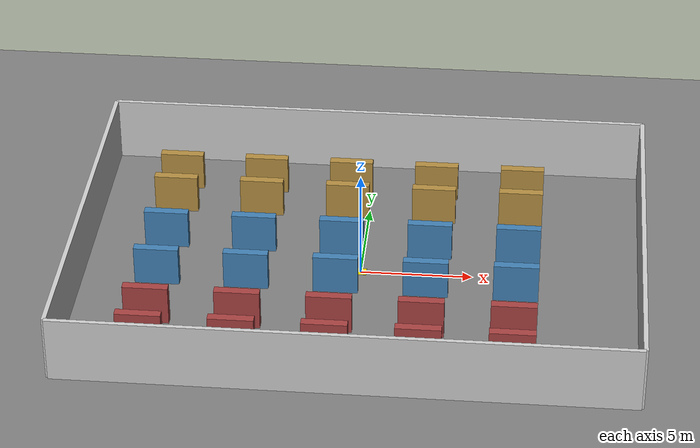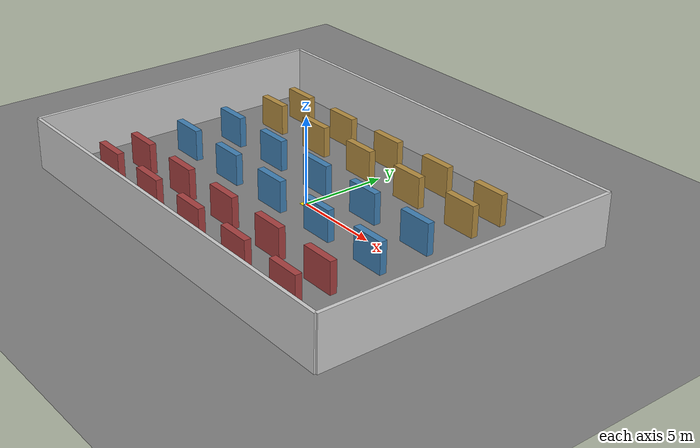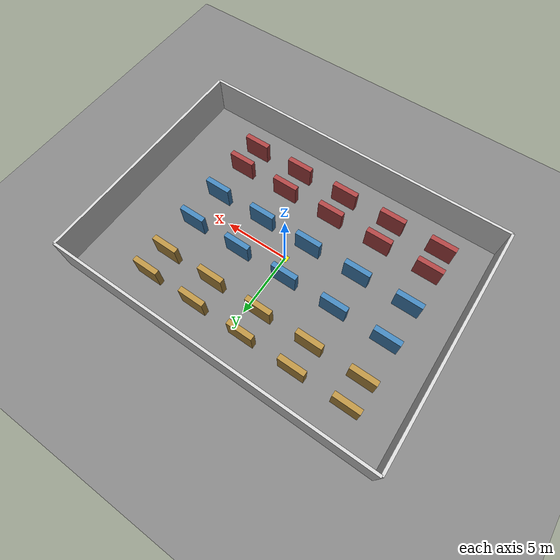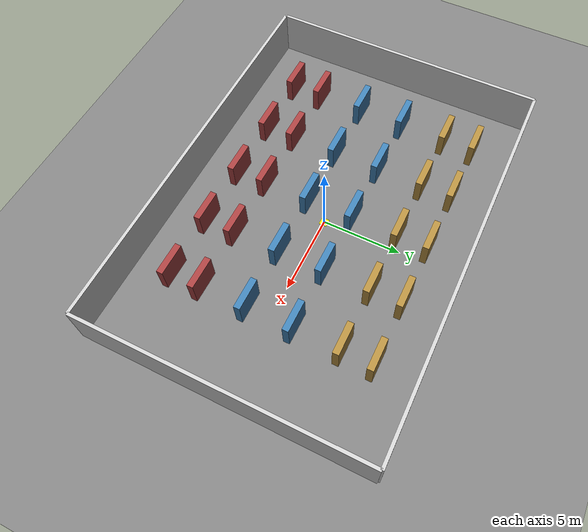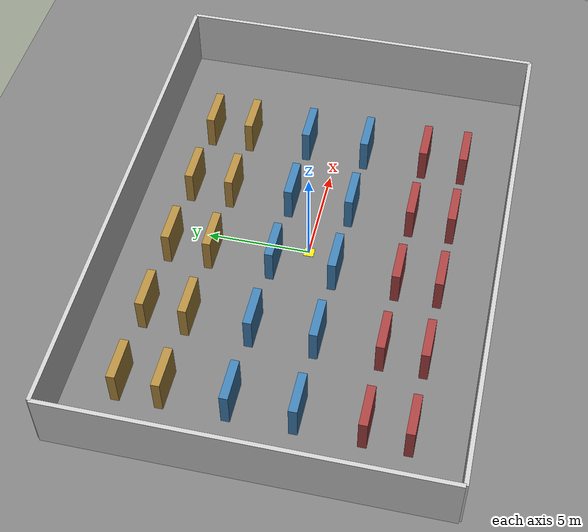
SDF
<?xml version="1.0" ?>
<sdf version="1.6">
  <world name="aviation_warehouse">

    <!-- ── Lighting ── -->
    <light name="sun" type="directional">
      <cast_shadows>true</cast_shadows>
      <pose>0 0 20 0 0 0</pose>
      <diffuse>0.8 0.8 0.8 1</diffuse>
      <specular>0.2 0.2 0.2 1</specular>
      <direction>-0.5 0.1 -0.9</direction>
    </light>

    <light name="ceiling_light_1" type="point">
      <pose>0 0 5.5 0 0 0</pose>
      <diffuse>1 1 0.95 1</diffuse>
      <specular>0.1 0.1 0.1 1</specular>
      <attenuation><range>20</range><linear>0.05</linear></attenuation>
    </light>

    <light name="ceiling_light_2" type="point">
      <pose>10 0 5.5 0 0 0</pose>
      <diffuse>1 1 0.95 1</diffuse>
      <specular>0.1 0.1 0.1 1</specular>
      <attenuation><range>20</range><linear>0.05</linear></attenuation>
    </light>

    <light name="ceiling_light_3" type="point">
      <pose>-10 0 5.5 0 0 0</pose>
      <diffuse>1 1 0.95 1</diffuse>
      <specular>0.1 0.1 0.1 1</specular>
      <attenuation><range>20</range><linear>0.05</linear></attenuation>
    </light>

    <!-- ── Physics ── -->
    <physics type="ode">
      <real_time_update_rate>1000</real_time_update_rate>
      <max_step_size>0.001</max_step_size>
    </physics>

    <!-- ── Ground plane ── -->
    <model name="ground_plane">
      <static>true</static>
      <link name="link">
        <collision name="collision">
          <geometry><plane><normal>0 0 1</normal><size>60 40</size></plane></geometry>
        </collision>
        <visual name="visual">
          <geometry><plane><normal>0 0 1</normal><size>60 40</size></plane></geometry>
          <material>
            <ambient>0.4 0.4 0.4 1</ambient>
            <diffuse>0.5 0.5 0.5 1</diffuse>
          </material>
        </visual>
      </link>
    </model>

    <!-- ══════════════════════════════════════
         WAREHOUSE OUTER WALLS  (25 m × 18 m)
         ══════════════════════════════════════ -->

    <!-- North wall -->
    <model name="wall_north">
      <static>true</static>
      <pose>0 9 1.5 0 0 0</pose>
      <link name="link">
        <collision name="c"><geometry><box><size>25 0.2 3</size></box></geometry></collision>
        <visual name="v"><geometry><box><size>25 0.2 3</size></box></geometry>
          <material><ambient>0.7 0.7 0.7 1</ambient><diffuse>0.8 0.8 0.8 1</diffuse></material>
        </visual>
      </link>
    </model>

    <!-- South wall -->
    <model name="wall_south">
      <static>true</static>
      <pose>0 -9 1.5 0 0 0</pose>
      <link name="link">
        <collision name="c"><geometry><box><size>25 0.2 3</size></box></geometry></collision>
        <visual name="v"><geometry><box><size>25 0.2 3</size></box></geometry>
          <material><ambient>0.7 0.7 0.7 1</ambient><diffuse>0.8 0.8 0.8 1</diffuse></material>
        </visual>
      </link>
    </model>

    <!-- East wall -->
    <model name="wall_east">
      <static>true</static>
      <pose>12.5 0 1.5 0 0 0</pose>
      <link name="link">
        <collision name="c"><geometry><box><size>0.2 18 3</size></box></geometry></collision>
        <visual name="v"><geometry><box><size>0.2 18 3</size></box></geometry>
          <material><ambient>0.7 0.7 0.7 1</ambient><diffuse>0.8 0.8 0.8 1</diffuse></material>
        </visual>
      </link>
    </model>

    <!-- West wall -->
    <model name="wall_west">
      <static>true</static>
      <pose>-12.5 0 1.5 0 0 0</pose>
      <link name="link">
        <collision name="c"><geometry><box><size>0.2 18 3</size></box></geometry></collision>
        <visual name="v"><geometry><box><size>0.2 18 3</size></box></geometry>
          <material><ambient>0.7 0.7 0.7 1</ambient><diffuse>0.8 0.8 0.8 1</diffuse></material>
        </visual>
      </link>
    </model>

    <!-- Helper macro: each shelf bay = 2 m wide, 0.4 m deep, 1.8 m tall -->
    <!-- Row A  (y=+6.5) -->
    <model name="shelf_A1"><static>true</static><pose>-9  6.5 0.9 0 0 0</pose>
      <link name="l"><collision name="c"><geometry><box><size>2 0.4 1.8</size></box></geometry></collision>
      <visual name="v"><geometry><box><size>2 0.4 1.8</size></box></geometry>
        <material><ambient>0.6 0.45 0.2 1</ambient><diffuse>0.7 0.55 0.25 1</diffuse></material></visual></link></model>
    <model name="shelf_A2"><static>true</static><pose>-5  6.5 0.9 0 0 0</pose>
      <link name="l"><collision name="c"><geometry><box><size>2 0.4 1.8</size></box></geometry></collision>
      <visual name="v"><geometry><box><size>2 0.4 1.8</size></box></geometry>
        <material><ambient>0.6 0.45 0.2 1</ambient><diffuse>0.7 0.55 0.25 1</diffuse></material></visual></link></model>
    <model name="shelf_A3"><static>true</static><pose>-1  6.5 0.9 0 0 0</pose>
      <link name="l"><collision name="c"><geometry><box><size>2 0.4 1.8</size></box></geometry></collision>
      <visual name="v"><geometry><box><size>2 0.4 1.8</size></box></geometry>
        <material><ambient>0.6 0.45 0.2 1</ambient><diffuse>0.7 0.55 0.25 1</diffuse></material></visual></link></model>
    <model name="shelf_A4"><static>true</static><pose> 3  6.5 0.9 0 0 0</pose>
      <link name="l"><collision name="c"><geometry><box><size>2 0.4 1.8</size></box></geometry></collision>
      <visual name="v"><geometry><box><size>2 0.4 1.8</size></box></geometry>
        <material><ambient>0.6 0.45 0.2 1</ambient><diffuse>0.7 0.55 0.25 1</diffuse></material></visual></link></model>
    <model name="shelf_A5"><static>true</static><pose> 7  6.5 0.9 0 0 0</pose>
      <link name="l"><collision name="c"><geometry><box><size>2 0.4 1.8</size></box></geometry></collision>
      <visual name="v"><geometry><box><size>2 0.4 1.8</size></box></geometry>
        <material><ambient>0.6 0.45 0.2 1</ambient><diffuse>0.7 0.55 0.25 1</diffuse></material></visual></link></model>

    <!-- Row B  (y=+4.5, back-to-back with A across aisle) -->
    <model name="shelf_B1"><static>true</static><pose>-9  4.5 0.9 0 0 0</pose>
      <link name="l"><collision name="c"><geometry><box><size>2 0.4 1.8</size></box></geometry></collision>
      <visual name="v"><geometry><box><size>2 0.4 1.8</size></box></geometry>
        <material><ambient>0.6 0.45 0.2 1</ambient><diffuse>0.7 0.55 0.25 1</diffuse></material></visual></link></model>
    <model name="shelf_B2"><static>true</static><pose>-5  4.5 0.9 0 0 0</pose>
      <link name="l"><collision name="c"><geometry><box><size>2 0.4 1.8</size></box></geometry></collision>
      <visual name="v"><geometry><box><size>2 0.4 1.8</size></box></geometry>
        <material><ambient>0.6 0.45 0.2 1</ambient><diffuse>0.7 0.55 0.25 1</diffuse></material></visual></link></model>
    <model name="shelf_B3"><static>true</static><pose>-1  4.5 0.9 0 0 0</pose>
      <link name="l"><collision name="c"><geometry><box><size>2 0.4 1.8</size></box></geometry></collision>
      <visual name="v"><geometry><box><size>2 0.4 1.8</size></box></geometry>
        <material><ambient>0.6 0.45 0.2 1</ambient><diffuse>0.7 0.55 0.25 1</diffuse></material></visual></link></model>
    <model name="shelf_B4"><static>true</static><pose> 3  4.5 0.9 0 0 0</pose>
      <link name="l"><collision name="c"><geometry><box><size>2 0.4 1.8</size></box></geometry></collision>
      <visual name="v"><geometry><box><size>2 0.4 1.8</size></box></geometry>
        <material><ambient>0.6 0.45 0.2 1</ambient><diffuse>0.7 0.55 0.25 1</diffuse></material></visual></link></model>
    <model name="shelf_B5"><static>true</static><pose> 7  4.5 0.9 0 0 0</pose>
      <link name="l"><collision name="c"><geometry><box><size>2 0.4 1.8</size></box></geometry></collision>
      <visual name="v"><geometry><box><size>2 0.4 1.8</size></box></geometry>
        <material><ambient>0.6 0.45 0.2 1</ambient><diffuse>0.7 0.55 0.25 1</diffuse></material></visual></link></model>

    <!-- Row C  (y=+1.5) -->
    <model name="shelf_C1"><static>true</static><pose>-9  1.5 0.9 0 0 0</pose>
      <link name="l"><collision name="c"><geometry><box><size>2 0.4 1.8</size></box></geometry></collision>
      <visual name="v"><geometry><box><size>2 0.4 1.8</size></box></geometry>
        <material><ambient>0.2 0.4 0.6 1</ambient><diffuse>0.25 0.5 0.7 1</diffuse></material></visual></link></model>
    <model name="shelf_C2"><static>true</static><pose>-5  1.5 0.9 0 0 0</pose>
      <link name="l"><collision name="c"><geometry><box><size>2 0.4 1.8</size></box></geometry></collision>
      <visual name="v"><geometry><box><size>2 0.4 1.8</size></box></geometry>
        <material><ambient>0.2 0.4 0.6 1</ambient><diffuse>0.25 0.5 0.7 1</diffuse></material></visual></link></model>
    <model name="shelf_C3"><static>true</static><pose>-1  1.5 0.9 0 0 0</pose>
      <link name="l"><collision name="c"><geometry><box><size>2 0.4 1.8</size></box></geometry></collision>
      <visual name="v"><geometry><box><size>2 0.4 1.8</size></box></geometry>
        <material><ambient>0.2 0.4 0.6 1</ambient><diffuse>0.25 0.5 0.7 1</diffuse></material></visual></link></model>
    <model name="shelf_C4"><static>true</static><pose> 3  1.5 0.9 0 0 0</pose>
      <link name="l"><collision name="c"><geometry><box><size>2 0.4 1.8</size></box></geometry></collision>
      <visual name="v"><geometry><box><size>2 0.4 1.8</size></box></geometry>
        <material><ambient>0.2 0.4 0.6 1</ambient><diffuse>0.25 0.5 0.7 1</diffuse></material></visual></link></model>
    <model name="shelf_C5"><static>true</static><pose> 7  1.5 0.9 0 0 0</pose>
      <link name="l"><collision name="c"><geometry><box><size>2 0.4 1.8</size></box></geometry></collision>
      <visual name="v"><geometry><box><size>2 0.4 1.8</size></box></geometry>
        <material><ambient>0.2 0.4 0.6 1</ambient><diffuse>0.25 0.5 0.7 1</diffuse></material></visual></link></model>

    <!-- Row D  (y=-1.5) -->
    <model name="shelf_D1"><static>true</static><pose>-9 -1.5 0.9 0 0 0</pose>
      <link name="l"><collision name="c"><geometry><box><size>2 0.4 1.8</size></box></geometry></collision>
      <visual name="v"><geometry><box><size>2 0.4 1.8</size></box></geometry>
        <material><ambient>0.2 0.4 0.6 1</ambient><diffuse>0.25 0.5 0.7 1</diffuse></material></visual></link></model>
    <model name="shelf_D2"><static>true</static><pose>-5 -1.5 0.9 0 0 0</pose>
      <link name="l"><collision name="c"><geometry><box><size>2 0.4 1.8</size></box></geometry></collision>
      <visual name="v"><geometry><box><size>2 0.4 1.8</size></box></geometry>
        <material><ambient>0.2 0.4 0.6 1</ambient><diffuse>0.25 0.5 0.7 1</diffuse></material></visual></link></model>
    <model name="shelf_D3"><static>true</static><pose>-1 -1.5 0.9 0 0 0</pose>
      <link name="l"><collision name="c"><geometry><box><size>2 0.4 1.8</size></box></geometry></collision>
      <visual name="v"><geometry><box><size>2 0.4 1.8</size></box></geometry>
        <material><ambient>0.2 0.4 0.6 1</ambient><diffuse>0.25 0.5 0.7 1</diffuse></material></visual></link></model>
    <model name="shelf_D4"><static>true</static><pose> 3 -1.5 0.9 0 0 0</pose>
      <link name="l"><collision name="c"><geometry><box><size>2 0.4 1.8</size></box></geometry></collision>
      <visual name="v"><geometry><box><size>2 0.4 1.8</size></box></geometry>
        <material><ambient>0.2 0.4 0.6 1</ambient><diffuse>0.25 0.5 0.7 1</diffuse></material></visual></link></model>
    <model name="shelf_D5"><static>true</static><pose> 7 -1.5 0.9 0 0 0</pose>
      <link name="l"><collision name="c"><geometry><box><size>2 0.4 1.8</size></box></geometry></collision>
      <visual name="v"><geometry><box><size>2 0.4 1.8</size></box></geometry>
        <material><ambient>0.2 0.4 0.6 1</ambient><diffuse>0.25 0.5 0.7 1</diffuse></material></visual></link></model>

    <!-- Row E  (y=-4.5) -->
    <model name="shelf_E1"><static>true</static><pose>-9 -4.5 0.9 0 0 0</pose>
      <link name="l"><collision name="c"><geometry><box><size>2 0.4 1.8</size></box></geometry></collision>
      <visual name="v"><geometry><box><size>2 0.4 1.8</size></box></geometry>
        <material><ambient>0.5 0.2 0.2 1</ambient><diffuse>0.65 0.25 0.25 1</diffuse></material></visual></link></model>
    <model name="shelf_E2"><static>true</static><pose>-5 -4.5 0.9 0 0 0</pose>
      <link name="l"><collision name="c"><geometry><box><size>2 0.4 1.8</size></box></geometry></collision>
      <visual name="v"><geometry><box><size>2 0.4 1.8</size></box></geometry>
        <material><ambient>0.5 0.2 0.2 1</ambient><diffuse>0.65 0.25 0.25 1</diffuse></material></visual></link></model>
    <model name="shelf_E3"><static>true</static><pose>-1 -4.5 0.9 0 0 0</pose>
      <link name="l"><collision name="c"><geometry><box><size>2 0.4 1.8</size></box></geometry></collision>
      <visual name="v"><geometry><box><size>2 0.4 1.8</size></box></geometry>
        <material><ambient>0.5 0.2 0.2 1</ambient><diffuse>0.65 0.25 0.25 1</diffuse></material></visual></link></model>
    <model name="shelf_E4"><static>true</static><pose> 3 -4.5 0.9 0 0 0</pose>
      <link name="l"><collision name="c"><geometry><box><size>2 0.4 1.8</size></box></geometry></collision>
      <visual name="v"><geometry><box><size>2 0.4 1.8</size></box></geometry>
        <material><ambient>0.5 0.2 0.2 1</ambient><diffuse>0.65 0.25 0.25 1</diffuse></material></visual></link></model>
    <model name="shelf_E5"><static>true</static><pose> 7 -4.5 0.9 0 0 0</pose>
      <link name="l"><collision name="c"><geometry><box><size>2 0.4 1.8</size></box></geometry></collision>
      <visual name="v"><geometry><box><size>2 0.4 1.8</size></box></geometry>
        <material><ambient>0.5 0.2 0.2 1</ambient><diffuse>0.65 0.25 0.25 1</diffuse></material></visual></link></model>

    <!-- Row F  (y=-6.5) -->
    <model name="shelf_F1"><static>true</static><pose>-9 -6.5 0.9 0 0 0</pose>
      <link name="l"><collision name="c"><geometry><box><size>2 0.4 1.8</size></box></geometry></collision>
      <visual name="v"><geometry><box><size>2 0.4 1.8</size></box></geometry>
        <material><ambient>0.5 0.2 0.2 1</ambient><diffuse>0.65 0.25 0.25 1</diffuse></material></visual></link></model>
    <model name="shelf_F2"><static>true</static><pose>-5 -6.5 0.9 0 0 0</pose>
      <link name="l"><collision name="c"><geometry><box><size>2 0.4 1.8</size></box></geometry></collision>
      <visual name="v"><geometry><box><size>2 0.4 1.8</size></box></geometry>
        <material><ambient>0.5 0.2 0.2 1</ambient><diffuse>0.65 0.25 0.25 1</diffuse></material></visual></link></model>
    <model name="shelf_F3"><static>true</static><pose>-1 -6.5 0.9 0 0 0</pose>
      <link name="l"><collision name="c"><geometry><box><size>2 0.4 1.8</size></box></geometry></collision>
      <visual name="v"><geometry><box><size>2 0.4 1.8</size></box></geometry>
        <material><ambient>0.5 0.2 0.2 1</ambient><diffuse>0.65 0.25 0.25 1</diffuse></material></visual></link></model>
    <model name="shelf_F4"><static>true</static><pose> 3 -6.5 0.9 0 0 0</pose>
      <link name="l"><collision name="c"><geometry><box><size>2 0.4 1.8</size></box></geometry></collision>
      <visual name="v"><geometry><box><size>2 0.4 1.8</size></box></geometry>
        <material><ambient>0.5 0.2 0.2 1</ambient><diffuse>0.65 0.25 0.25 1</diffuse></material></visual></link></model>
    <model name="shelf_F5"><static>true</static><pose> 7 -6.5 0.9 0 0 0</pose>
      <link name="l"><collision name="c"><geometry><box><size>2 0.4 1.8</size></box></geometry></collision>
      <visual name="v"><geometry><box><size>2 0.4 1.8</size></box></geometry>
        <material><ambient>0.5 0.2 0.2 1</ambient><diffuse>0.65 0.25 0.25 1</diffuse></material></visual></link></model>

    <!-- ══════════════════════════════════════
         SPAWN POINT marker (yellow pad at 0,0)
         ══════════════════════════════════════ -->
    <model name="spawn_marker">
      <static>true</static>
      <pose>0 0 0.01 0 0 0</pose>
      <link name="link">
        <visual name="v">
          <geometry><box><size>0.5 0.5 0.01</size></box></geometry>
          <material><ambient>1 0.9 0 1</ambient><diffuse>1 0.9 0 1</diffuse></material>
        </visual>
      </link>
    </model>

  </world>
</sdf>
